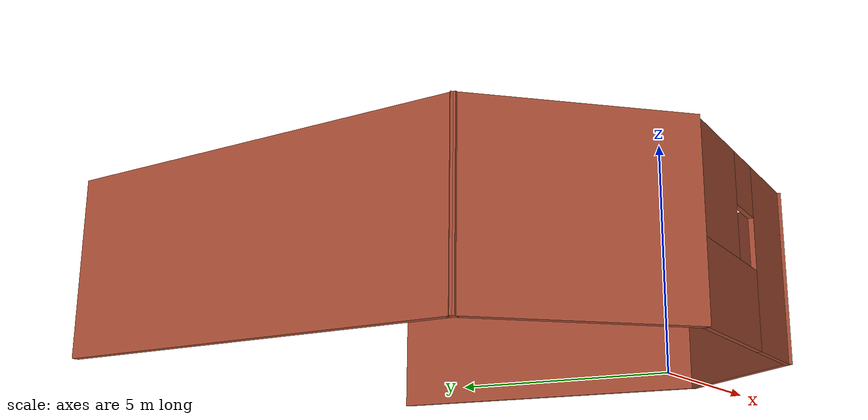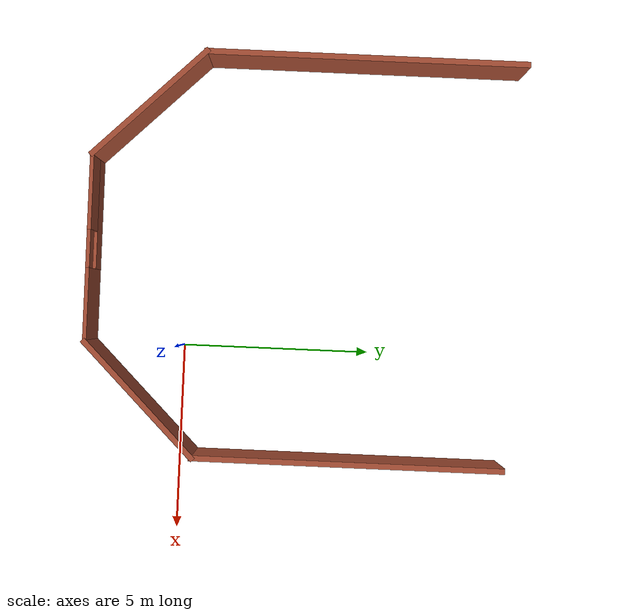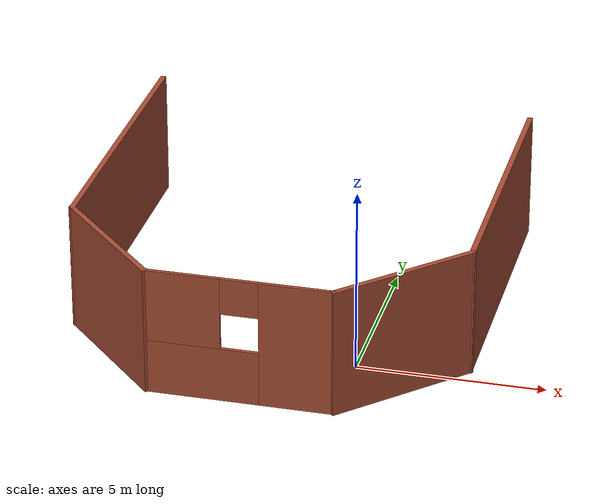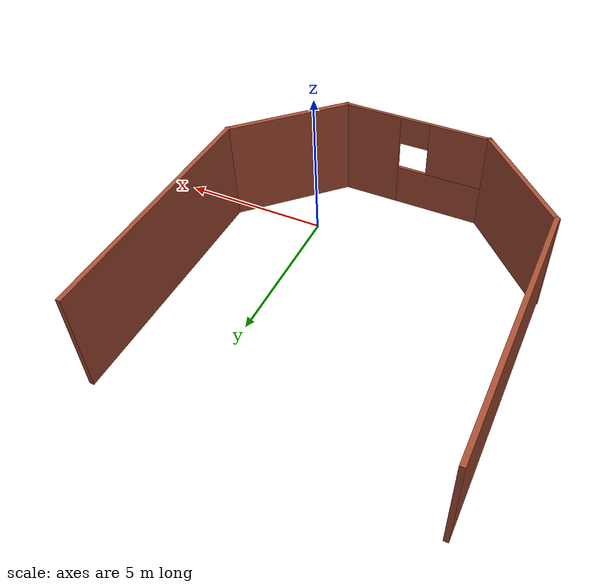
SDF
<?xml version='1.0'?>
<sdf version='1.6'>
  <model name='janela'>
    <pose frame=''>-2.401 3.15443 0 0 -0 0</pose>
    <link name='Wall_0'>
      <pose frame=''>-0.060999 -5.59343 0 0 -0 3.14159</pose>
      <visual name='Wall_0_Visual_0'>
        <pose frame=''>-1.51609 0 1.75 0 -0 0</pose>
        <geometry>
          <box>
            <size>1.98818 0.1 3.5</size>
          </box>
        </geometry>
        <material>
          <script>
            <uri>file://media/materials/scripts/gazebo.material</uri>
            <name>Gazebo/Bricks</name>
          </script>
          <ambient>1 1 1 1</ambient>
        </material>
        <meta>
          <layer>0</layer>
        </meta>
      </visual>
      <collision name='Wall_0_Collision_0'>
        <geometry>
          <box>
            <size>1.98818 0.1 3.5</size>
          </box>
        </geometry>
        <pose frame=''>-1.51609 0 1.75 0 -0 0</pose>
      </collision>
      <visual name='Wall_0_Visual_1'>
        <pose frame=''>0.994089 0 0.75 0 -0 0</pose>
        <geometry>
          <box>
            <size>3.03218 0.1 1.5</size>
          </box>
        </geometry>
        <material>
          <script>
            <uri>file://media/materials/scripts/gazebo.material</uri>
            <name>Gazebo/Bricks</name>
          </script>
          <ambient>1 1 1 1</ambient>
        </material>
        <meta>
          <layer>0</layer>
        </meta>
      </visual>
      <collision name='Wall_0_Collision_1'>
        <geometry>
          <box>
            <size>3.03218 0.1 1.5</size>
          </box>
        </geometry>
        <pose frame=''>0.994089 0 0.75 0 -0 0</pose>
      </collision>
      <visual name='Wall_0_Visual_2'>
        <pose frame=''>1.49409 0 2.5 0 -0 0</pose>
        <geometry>
          <box>
            <size>2.03218 0.1 2</size>
          </box>
        </geometry>
        <material>
          <script>
            <uri>file://media/materials/scripts/gazebo.material</uri>
            <name>Gazebo/Bricks</name>
          </script>
          <ambient>1 1 1 1</ambient>
        </material>
        <meta>
          <layer>0</layer>
        </meta>
      </visual>
      <collision name='Wall_0_Collision_2'>
        <geometry>
          <box>
            <size>2.03218 0.1 2</size>
          </box>
        </geometry>
        <pose frame=''>1.49409 0 2.5 0 -0 0</pose>
      </collision>
      <visual name='Wall_0_Visual_3'>
        <pose frame=''>-0.022002 0 3 0 -0 0</pose>
        <geometry>
          <box>
            <size>1 0.1 1</size>
          </box>
        </geometry>
        <material>
          <script>
            <uri>file://media/materials/scripts/gazebo.material</uri>
            <name>Gazebo/Bricks</name>
          </script>
          <ambient>1 1 1 1</ambient>
        </material>
        <meta>
          <layer>0</layer>
        </meta>
      </visual>
      <collision name='Wall_0_Collision_3'>
        <geometry>
          <box>
            <size>1 0.1 1</size>
          </box>
        </geometry>
        <pose frame=''>-0.022002 0 3 0 -0 0</pose>
      </collision>
    </link>
    <link name='Wall_1'>
      <collision name='Wall_1_Collision'>
        <geometry>
          <box>
            <size>4.14238 0.15 3.5</size>
          </box>
        </geometry>
        <pose frame=''>0 0 1.75 0 -0 0</pose>
      </collision>
      <visual name='Wall_1_Visual'>
        <pose frame=''>0 0 1.75 0 -0 0</pose>
        <geometry>
          <box>
            <size>4.14238 0.15 3.5</size>
          </box>
        </geometry>
        <material>
          <script>
            <uri>file://media/materials/scripts/gazebo.material</uri>
            <name>Gazebo/Bricks</name>
          </script>
          <ambient>1 1 1 1</ambient>
        </material>
        <meta>
          <layer>0</layer>
        </meta>
      </visual>
      <pose frame=''>-3.9095 -4.15943 0 0 -0 2.34008</pose>
    </link>
    <link name='Wall_2'>
      <collision name='Wall_2_Collision'>
        <geometry>
          <box>
            <size>8.5 0.15 3.5</size>
          </box>
        </geometry>
        <pose frame=''>0 0 1.75 0 -0 0</pose>
      </collision>
      <visual name='Wall_2_Visual'>
        <pose frame=''>0 0 1.75 0 -0 0</pose>
        <geometry>
          <box>
            <size>8.5 0.15 3.5</size>
          </box>
        </geometry>
        <material>
          <script>
            <uri>file://media/materials/scripts/gazebo.material</uri>
            <name>Gazebo/Bricks</name>
          </script>
          <ambient>1 1 1 1</ambient>
        </material>
        <meta>
          <layer>0</layer>
        </meta>
      </visual>
      <pose frame=''>-5.298 1.44957 0 0 -0 1.5708</pose>
    </link>
    <link name='Wall_7'>
      <collision name='Wall_7_Collision'>
        <geometry>
          <box>
            <size>4.25 0.15 3.5</size>
          </box>
        </geometry>
        <pose frame=''>0 0 1.75 0 -0 0</pose>
      </collision>
      <visual name='Wall_7_Visual'>
        <pose frame=''>0 0 1.75 0 -0 0</pose>
        <geometry>
          <box>
            <size>4.25 0.15 3.5</size>
          </box>
        </geometry>
        <material>
          <script>
            <uri>file://media/materials/scripts/gazebo.material</uri>
            <name>Gazebo/Bricks</name>
          </script>
          <ambient>1 1 1 1</ambient>
        </material>
        <meta>
          <layer>0</layer>
        </meta>
      </visual>
      <pose frame=''>3.8485 -4.14393 0 0 -0 0.785398</pose>
    </link>
    <link name='Wall_8'>
      <collision name='Wall_8_Collision'>
        <geometry>
          <box>
            <size>8.25 0.15 3.5</size>
          </box>
        </geometry>
        <pose frame=''>0 0 1.75 0 -0 0</pose>
      </collision>
      <visual name='Wall_8_Visual'>
        <pose frame=''>0 0 1.75 0 -0 0</pose>
        <geometry>
          <box>
            <size>8.25 0.15 3.5</size>
          </box>
        </geometry>
        <material>
          <script>
            <uri>file://media/materials/scripts/gazebo.material</uri>
            <name>Gazebo/Bricks</name>
          </script>
          <ambient>1 1 1 1</ambient>
        </material>
        <meta>
          <layer>0</layer>
        </meta>
      </visual>
      <pose frame=''>5.298 1.35557 0 0 -0 1.5708</pose>
    </link>
    <static>1</static>
  </model>
</sdf>
